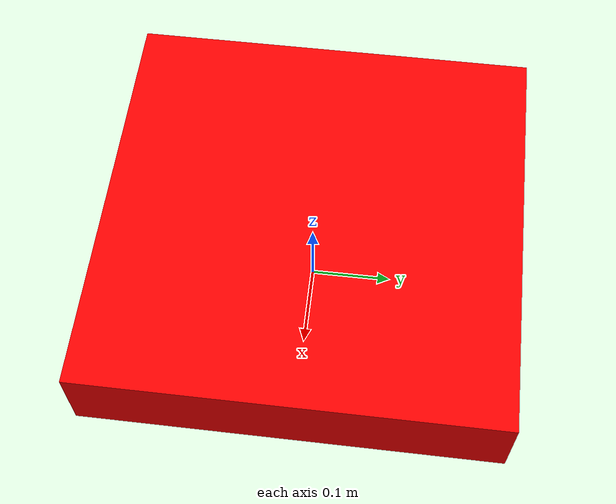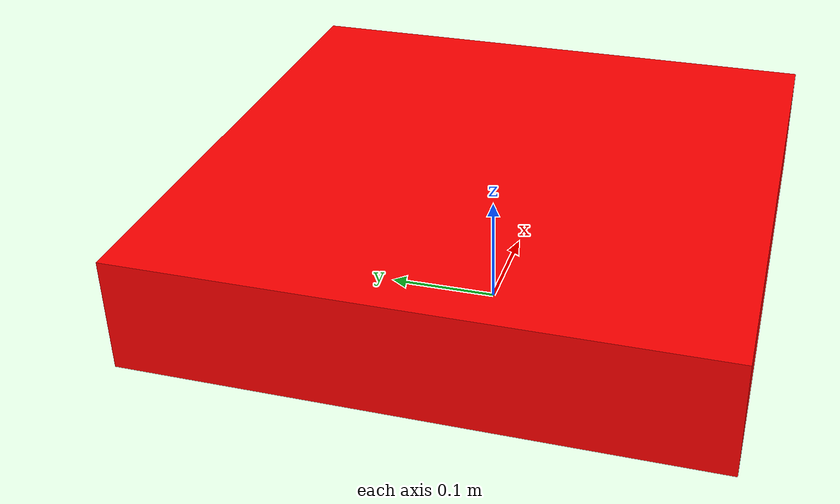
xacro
<?xml version="1.0"?>
<robot xmlns:xacro="http://www.ros.org/wiki/xacro" name="test">
    <!-- INCLUDES -->
    <xacro:include filename="gazebo_materials.xacro" />
    <xacro:include filename="inertial_macros.xacro" />

    <!-- PROPERTIES -->
    <xacro:property name="PI" value="3.1415926535897931"/>

    <!-- BASE LINK -->
    <link name="base_link">
    </link>

    <!-- WHEEL JOINT AND LINK -->
    <joint name="wheel_joint" type="continuous">
        <origin xyz="0 0 0.1" rpy="0 0 0" />
        <parent link="base_link" />
        <child link="wheel_link" />
        <axis xyz="0.0 0.0 1.0"/>
    </joint>

    <link name="wheel_link">
        <visual>
            <origin xyz="0.0 0.0 0.0" rpy="0.0 0.0 0.0" />
            <geometry>
                <box size="0.5 0.5 0.1" />
            </geometry>
            <material name="red" />
        </visual>
        <collision>
            <origin xyz="0.0 0.0 0.0" rpy="0.0 0.0 0.0" />
            <geometry>
                <box size="0.5 0.5 0.1" />
            </geometry>
            <material name="red" />
        </collision>
        <xacro:inertial_box mass="1.0" x="0.5" y="0.5" z="0.1">
            <origin xyz="0.0 0.0 0.0" rpy="0.0 0.0 0.0" />
        </xacro:inertial_box>
    </link>

    <ros2_control name="Wheel" type="actuator">
        <hardware>
            <plugin>rmd_hardware_interface/RMDHardwareInterface</plugin>
            <param name="interface">can0</param>
        </hardware>
        <joint name="wheel_joint">
            <param name="node_id">1</param>
            <param name="model">RMDX8_19</param>
            <param name="control_mode">torque</param>
            <param name="kp">0.0</param>
            <param name="kd">0.0</param>
            <param name="reduction">1.0</param>
            <param name="offset">0.0</param>
            <param name="home_on_startup">True</param>
            <param name="homing_vel">1</param>
            <state_interface name="position"/>
            <state_interface name="velocity"/>
            <state_interface name="effort"/>
            <command_interface name="effort"/>
        </joint>
    </ros2_control>
</robot>

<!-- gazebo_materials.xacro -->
<robot xmlns:xacro="http://www.ros.org/wiki/xacro">

    <material name="white">
        <color rgba="1 1 1 1" />
    </material>

    <material name="orange">
        <color rgba="1 0.3 0.1 1" />
    </material>

    <material name="blue">
        <color rgba="0.2 0.2 1 1" />
    </material>

    <material name="black">
        <color rgba="0 0 0 1" />
    </material>

    <material name="gray">
        <color rgba="0.3 0.3 0.3 1" />
    </material>

    <material name="yellow">
        <color rgba="1 1 0.5 1" />
    </material>

    <material name="DarkGrey">
        <color rgba="0.1 0.1 0.1 1.0" />
    </material>

    <material name="grey">
        <color rgba="0.2 0.2 0.2 1.0" />
    </material>

    <material name="green">
        <color rgba="0.0 0.8 0.0 1.0" />
    </material>

    <material name="red">
        <color rgba="1.0 0.0 0.0 1.0" />
    </material>

</robot>

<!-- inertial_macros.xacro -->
<robot xmlns:xacro="http://www.ros.org/wiki/xacro">

    <!-- Specify some standard inertial calculations
    https://en.wikipedia.org/wiki/List_of_moments_of_inertia -->
    <!-- These make use of xacro's mathematical functionality -->

    <xacro:macro name="inertial_sphere" params="mass radius *origin">
        <inertial>
            <xacro:insert_block name="origin" />
            <mass value="${mass}" />
            <inertia ixx="${(2/5) * mass * (radius*radius)}" ixy="0.0" ixz="0.0"
                iyy="${(2/5) * mass * (radius*radius)}" iyz="0.0"
                izz="${(2/5) * mass * (radius*radius)}" />
        </inertial>
    </xacro:macro>

    <xacro:macro name="inertial_box" params="mass x y z *origin">
        <inertial>
            <xacro:insert_block name="origin" />
            <mass value="${mass}" />
            <inertia ixx="${(1/12) * mass * (y*y+z*z)}" ixy="0.0" ixz="0.0"
                iyy="${(1/12) * mass * (x*x+z*z)}" iyz="0.0"
                izz="${(1/12) * mass * (x*x+y*y)}" />
        </inertial>
    </xacro:macro>

    <xacro:macro name="inertial_cylinder" params="mass length radius *origin">
        <inertial>
            <xacro:insert_block name="origin" />
            <mass value="${mass}" />
            <inertia ixx="${(1/12) * mass * (3*radius*radius + length*length)}" ixy="0.0" ixz="0.0"
                iyy="${(1/12) * mass * (3*radius*radius + length*length)}" iyz="0.0"
                izz="${(1/2) * mass * (radius*radius)}" />
        </inertial>
    </xacro:macro>

</robot>
